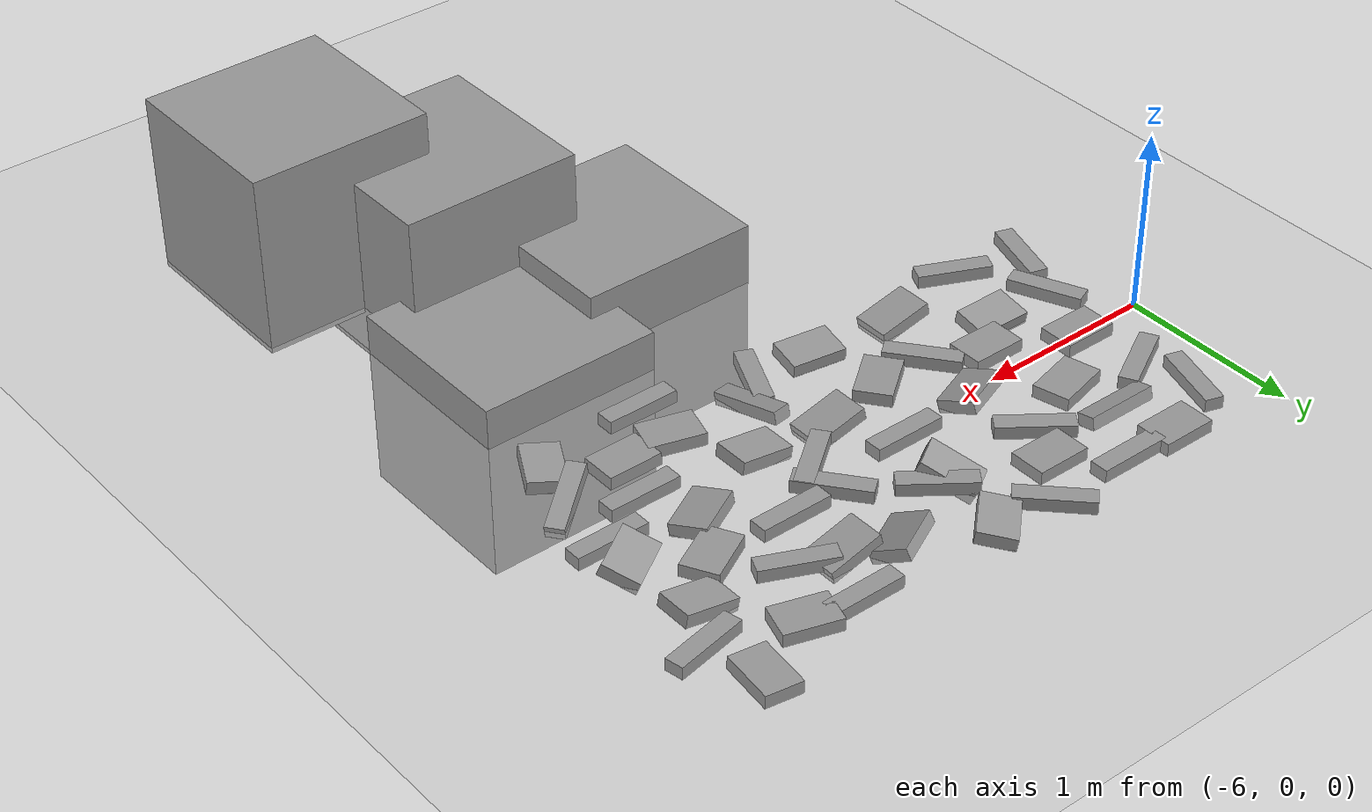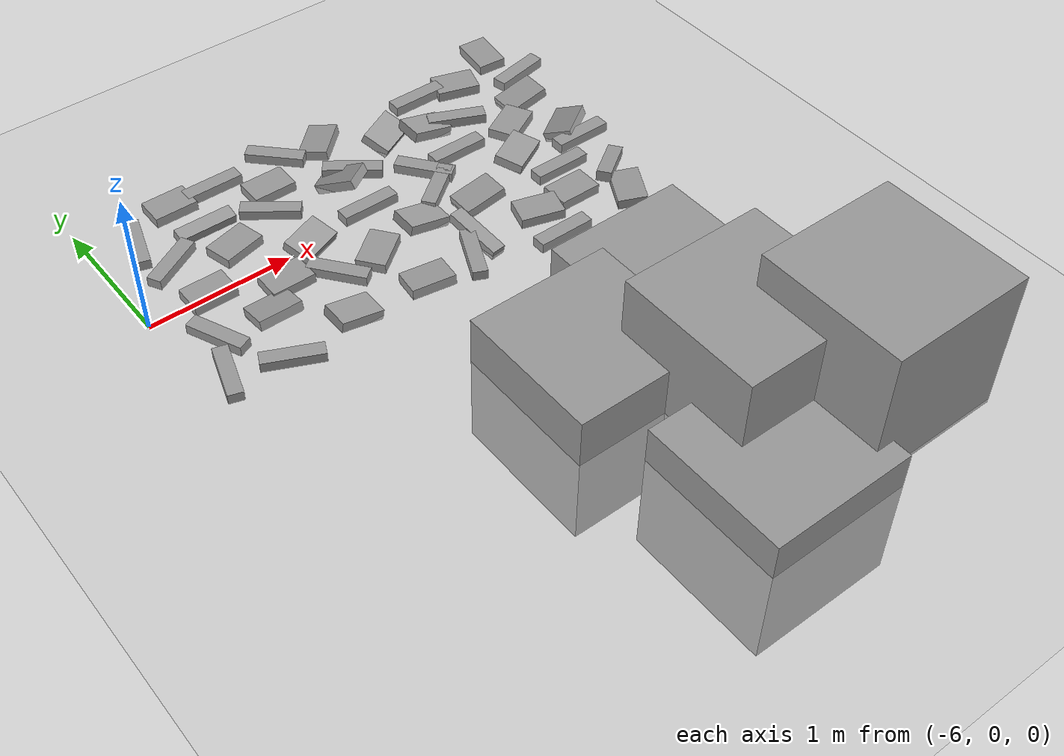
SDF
<sdf version="1.7">
 <world name="default">
  <model name="ground_plane">
   <static>1</static>
   <link name="link">
    <collision name="collision">
     <geometry><plane><normal>0 0 1</normal><size>100 100</size></plane></geometry>
     <surface><friction><ode><mu>200</mu><mu2>200</mu2></ode></friction></surface>
    </collision>
    <visual name="visual">
     <cast_shadows>0</cast_shadows>
     <geometry><plane><normal>0 0 1</normal><size>100 100</size></plane></geometry>
     <material>
      <script><uri>file://media/materials/scripts/gazebo.material</uri><name>Gazebo/Grey</name></script>
     </material>
    </visual>
   </link>
  </model>
  <model name="box_0.4_0.1_0.07_6">
   <pose>-2.83467 -0.561057 0 0 0.21967 0.65136</pose>
   <link name="Stairs_14">
    <visual name="Stairs_14_Visual_0">
     <pose>0 0 0.035 0 -0 0</pose>
     <geometry><box><size>0.4 0.1 0.07</size></box></geometry>
     <material>
      <script><uri>file://media/materials/scripts/gazebo.material</uri><name>Gazebo/Grey</name></script>
      <ambient>1 1 1 1</ambient>
     </material>
     <meta><layer>0</layer></meta>
    </visual>
    <collision name="Stairs_14_Collision_0">
     <geometry><box><size>0.4 0.1 0.07</size></box></geometry>
     <pose>0 0 0.035 0 -0 0</pose>
     <surface><friction><ode><mu>200</mu><mu2>200</mu2></ode></friction></surface>
    </collision>
   </link>
   <static>1</static>
  </model>
  <model name="box_0.4_0.1_0.07_7">
   <pose>-3.9527 -0.560939 0 0 -0.198986 1.69782</pose>
   <link name="Stairs_14">
    <visual name="Stairs_14_Visual_0">
     <pose>0 0 0.035 0 -0 0</pose>
     <geometry><box><size>0.4 0.1 0.07</size></box></geometry>
     <material>
      <script><uri>file://media/materials/scripts/gazebo.material</uri><name>Gazebo/Grey</name></script>
      <ambient>1 1 1 1</ambient>
     </material>
     <meta><layer>0</layer></meta>
    </visual>
    <collision name="Stairs_14_Collision_0">
     <geometry><box><size>0.4 0.1 0.07</size></box></geometry>
     <pose>0 0 0.035 0 -0 0</pose>
     <surface><friction><ode><mu>200</mu><mu2>200</mu2></ode></friction></surface>
    </collision>
   </link>
   <static>1</static>
  </model>
  <model name="box_0.4_0.1_0.07_8">
   <pose>-3.35327 0.459325 0 0 0 -0.427504</pose>
   <link name="Stairs_14">
    <visual name="Stairs_14_Visual_0">
     <pose>0 0 0.035 0 -0 0</pose>
     <geometry><box><size>0.4 0.1 0.07</size></box></geometry>
     <material>
      <script><uri>file://media/materials/scripts/gazebo.material</uri><name>Gazebo/Grey</name></script>
      <ambient>1 1 1 1</ambient>
     </material>
     <meta><layer>0</layer></meta>
    </visual>
    <collision name="Stairs_14_Collision_0">
     <geometry><box><size>0.4 0.1 0.07</size></box></geometry>
     <pose>0 0 0.035 0 -0 0</pose>
     <surface><friction><ode><mu>200</mu><mu2>200</mu2></ode></friction></surface>
    </collision>
   </link>
   <static>1</static>
  </model>
  <model name="box_0.4_0.1_0.07_9">
   <pose>-3.84177 0.151803 0 0 0 -0.909347</pose>
   <link name="Stairs_14">
    <visual name="Stairs_14_Visual_0">
     <pose>0 0 0.035 0 -0 0</pose>
     <geometry><box><size>0.4 0.1 0.07</size></box></geometry>
     <material>
      <script><uri>file://media/materials/scripts/gazebo.material</uri><name>Gazebo/Grey</name></script>
      <ambient>1 1 1 1</ambient>
     </material>
     <meta><layer>0</layer></meta>
    </visual>
    <collision name="Stairs_14_Collision_0">
     <geometry><box><size>0.4 0.1 0.07</size></box></geometry>
     <pose>0 0 0.035 0 -0 0</pose>
     <surface><friction><ode><mu>200</mu><mu2>200</mu2></ode></friction></surface>
    </collision>
   </link>
   <static>1</static>
  </model>
  <model name="box_0.3_0.2_0.1_2">
   <pose>-3.24691 -0.07902 0 0.162224 -0 0.485941</pose>
   <link name="Stairs_9">
    <visual name="Stairs_9_Visual_0">
     <pose>0 0 0.035 0 -0 0</pose>
     <geometry><box><size>0.3 0.2 0.07</size></box></geometry>
     <material>
      <script><uri>file://media/materials/scripts/gazebo.material</uri><name>Gazebo/Grey</name></script>
      <ambient>1 1 1 1</ambient>
     </material>
     <meta><layer>0</layer></meta>
    </visual>
    <collision name="Stairs_9_Collision_0">
     <geometry><box><size>0.3 0.2 0.07</size></box></geometry>
     <pose>0 0 0.035 0 -0 0</pose>
     <surface><friction><ode><mu>200</mu><mu2>200</mu2></ode></friction></surface>
    </collision>
   </link>
   <static>1</static>
  </model>
  <model name="box_0.3_0.2_0.1_4">
   <pose>-3.50067 -0.629827 0 0 0 -0.287884</pose>
   <link name="Stairs_9">
    <visual name="Stairs_9_Visual_0">
     <pose>0 0 0.035 0 -0 0</pose>
     <geometry><box><size>0.3 0.2 0.07</size></box></geometry>
     <material>
      <script><uri>file://media/materials/scripts/gazebo.material</uri><name>Gazebo/Grey</name></script>
      <ambient>1 1 1 1</ambient>
     </material>
     <meta><layer>0</layer></meta>
    </visual>
    <collision name="Stairs_9_Collision_0">
     <geometry><box><size>0.3 0.2 0.07</size></box></geometry>
     <pose>0 0 0.035 0 -0 0</pose>
     <surface><friction><ode><mu>200</mu><mu2>200</mu2></ode></friction></surface>
    </collision>
   </link>
   <static>1</static>
  </model>
  <model name="box_0.3_0.2_0.1_10">
   <pose>-4.24662 0.814175 0 -0.148606 -0 0.746465</pose>
   <link name="Stairs_9">
    <visual name="Stairs_9_Visual_0">
     <pose>0 0 0.035 0 -0 0</pose>
     <geometry><box><size>0.3 0.2 0.07</size></box></geometry>
     <material>
      <script><uri>file://media/materials/scripts/gazebo.material</uri><name>Gazebo/Grey</name></script>
      <ambient>1 1 1 1</ambient>
     </material>
     <meta><layer>0</layer></meta>
    </visual>
    <collision name="Stairs_9_Collision_0">
     <geometry><box><size>0.3 0.2 0.07</size></box></geometry>
     <pose>0 0 0.035 0 -0 0</pose>
     <surface><friction><ode><mu>200</mu><mu2>200</mu2></ode></friction></surface>
    </collision>
   </link>
   <static>1</static>
  </model>
  <model name="box_0.3_0.2_0.1_11">
   <pose>-4.83425 0.032148 0 0.293641 -0 0.364797</pose>
   <link name="Stairs_9">
    <visual name="Stairs_9_Visual_0">
     <pose>0 0 0.035 0 -0 0</pose>
     <geometry><box><size>0.3 0.2 0.07</size></box></geometry>
     <material>
      <script><uri>file://media/materials/scripts/gazebo.material</uri><name>Gazebo/Grey</name></script>
      <ambient>1 1 1 1</ambient>
     </material>
     <meta><layer>0</layer></meta>
    </visual>
    <collision name="Stairs_9_Collision_0">
     <geometry><box><size>0.3 0.2 0.07</size></box></geometry>
     <pose>0 0 0.035 0 -0 0</pose>
     <surface><friction><ode><mu>200</mu><mu2>200</mu2></ode></friction></surface>
    </collision>
   </link>
   <static>1</static>
  </model>
  <model name="box_0.3_0.2_0.1_13">
   <pose>-4.44487 -0.717451 0 -0.093999 -0 -0.154705</pose>
   <link name="Stairs_9">
    <visual name="Stairs_9_Visual_0">
     <pose>0 0 0.035 0 -0 0</pose>
     <geometry><box><size>0.3 0.2 0.07</size></box></geometry>
     <material>
      <script><uri>file://media/materials/scripts/gazebo.material</uri><name>Gazebo/Grey</name></script>
      <ambient>1 1 1 1</ambient>
     </material>
     <meta><layer>0</layer></meta>
    </visual>
    <collision name="Stairs_9_Collision_0">
     <geometry><box><size>0.3 0.2 0.07</size></box></geometry>
     <pose>0 0 0.035 0 -0 0</pose>
     <surface><friction><ode><mu>200</mu><mu2>200</mu2></ode></friction></surface>
    </collision>
   </link>
   <static>1</static>
  </model>
  <model name="box_0.3_0.2_0.1_14">
   <pose>-3.13761 0.765182 0 0 0 -0.305362</pose>
   <link name="Stairs_9">
    <visual name="Stairs_9_Visual_0">
     <pose>0 0 0.035 0 -0 0</pose>
     <geometry><box><size>0.3 0.2 0.07</size></box></geometry>
     <material>
      <script><uri>file://media/materials/scripts/gazebo.material</uri><name>Gazebo/Grey</name></script>
      <ambient>1 1 1 1</ambient>
     </material>
     <meta><layer>0</layer></meta>
    </visual>
    <collision name="Stairs_9_Collision_0">
     <geometry><box><size>0.3 0.2 0.07</size></box></geometry>
     <pose>0 0 0.035 0 -0 0</pose>
     <surface><friction><ode><mu>200</mu><mu2>200</mu2></ode></friction></surface>
    </collision>
   </link>
   <static>1</static>
  </model>
  <model name="box_0.3_0.2_0.1_18">
   <pose>-5.13742 -0.186069 0 0 -0 0</pose>
   <link name="Stairs_9">
    <visual name="Stairs_9_Visual_0">
     <pose>0 0 0.035 0 -0 0</pose>
     <geometry><box><size>0.3 0.2 0.07</size></box></geometry>
     <material>
      <script><uri>file://media/materials/scripts/gazebo.material</uri><name>Gazebo/Grey</name></script>
      <ambient>1 1 1 1</ambient>
     </material>
     <meta><layer>0</layer></meta>
    </visual>
    <collision name="Stairs_9_Collision_0">
     <geometry><box><size>0.3 0.2 0.07</size></box></geometry>
     <pose>0 0 0.035 0 -0 0</pose>
     <surface><friction><ode><mu>200</mu><mu2>200</mu2></ode></friction></surface>
    </collision>
   </link>
   <static>1</static>
  </model>
  <model name="box_0.4_0.1_0.07_13">
   <pose>-4.87489 0.421648 0 0 0 -0.645463</pose>
   <link name="Stairs_14">
    <visual name="Stairs_14_Visual_0">
     <pose>0 0 0.035 0 -0 0</pose>
     <geometry><box><size>0.4 0.1 0.07</size></box></geometry>
     <material>
      <script><uri>file://media/materials/scripts/gazebo.material</uri><name>Gazebo/Grey</name></script>
      <ambient>1 1 1 1</ambient>
     </material>
     <meta><layer>0</layer></meta>
    </visual>
    <collision name="Stairs_14_Collision_0">
     <geometry><box><size>0.4 0.1 0.07</size></box></geometry>
     <pose>0 0 0.035 0 -0 0</pose>
     <surface><friction><ode><mu>200</mu><mu2>200</mu2></ode></friction></surface>
    </collision>
   </link>
   <static>1</static>
  </model>
  <model name="box_0.4_0.1_0.07_14">
   <pose>-5.05743 0.85867 0 0 -0 0</pose>
   <link name="Stairs_14">
    <visual name="Stairs_14_Visual_0">
     <pose>0 0 0.035 0 -0 0</pose>
     <geometry><box><size>0.4 0.1 0.07</size></box></geometry>
     <material>
      <script><uri>file://media/materials/scripts/gazebo.material</uri><name>Gazebo/Grey</name></script>
      <ambient>1 1 1 1</ambient>
     </material>
     <meta><layer>0</layer></meta>
    </visual>
    <collision name="Stairs_14_Collision_0">
     <geometry><box><size>0.4 0.1 0.07</size></box></geometry>
     <pose>0 0 0.035 0 -0 0</pose>
     <surface><friction><ode><mu>200</mu><mu2>200</mu2></ode></friction></surface>
    </collision>
   </link>
   <static>1</static>
  </model>
  <model name="box_0.4_0.1_0.07_15">
   <pose>-5.63027 0.375388 0 0 -0 0.50181</pose>
   <link name="Stairs_14">
    <visual name="Stairs_14_Visual_0">
     <pose>0 0 0.035 0 -0 0</pose>
     <geometry><box><size>0.4 0.1 0.07</size></box></geometry>
     <material>
      <script><uri>file://media/materials/scripts/gazebo.material</uri><name>Gazebo/Grey</name></script>
      <ambient>1 1 1 1</ambient>
     </material>
     <meta><layer>0</layer></meta>
    </visual>
    <collision name="Stairs_14_Collision_0">
     <geometry><box><size>0.4 0.1 0.07</size></box></geometry>
     <pose>0 0 0.035 0 -0 0</pose>
     <surface><friction><ode><mu>200</mu><mu2>200</mu2></ode></friction></surface>
    </collision>
   </link>
   <static>1</static>
  </model>
  <model name="box_0.4_0.1_0.07_16">
   <pose>-5.7174 -0.345289 0 0 0 -1.15775</pose>
   <link name="Stairs_14">
    <visual name="Stairs_14_Visual_0">
     <pose>0 0 0.035 0 -0 0</pose>
     <geometry><box><size>0.4 0.1 0.07</size></box></geometry>
     <material>
      <script><uri>file://media/materials/scripts/gazebo.material</uri><name>Gazebo/Grey</name></script>
      <ambient>1 1 1 1</ambient>
     </material>
     <meta><layer>0</layer></meta>
    </visual>
    <collision name="Stairs_14_Collision_0">
     <geometry><box><size>0.4 0.1 0.07</size></box></geometry>
     <pose>0 0 0.035 0 -0 0</pose>
     <surface><friction><ode><mu>200</mu><mu2>200</mu2></ode></friction></surface>
    </collision>
   </link>
   <static>1</static>
  </model>
  <model name="box_0.4_0.1_0.07_17">
   <pose>-5.45955 -0.765501 0 0 0 -0.432025</pose>
   <link name="Stairs_14">
    <visual name="Stairs_14_Visual_0">
     <pose>0 0 0.035 0 -0 0</pose>
     <geometry><box><size>0.4 0.1 0.07</size></box></geometry>
     <material>
      <script><uri>file://media/materials/scripts/gazebo.material</uri><name>Gazebo/Grey</name></script>
      <ambient>1 1 1 1</ambient>
     </material>
     <meta><layer>0</layer></meta>
    </visual>
    <collision name="Stairs_14_Collision_0">
     <geometry><box><size>0.4 0.1 0.07</size></box></geometry>
     <pose>0 0 0.035 0 -0 0</pose>
     <surface><friction><ode><mu>200</mu><mu2>200</mu2></ode></friction></surface>
    </collision>
   </link>
   <static>1</static>
  </model>
  <model name="box_0.4_0.1_0.07_22">
   <pose>-4.35317 0.072456 0 0 -0 0</pose>
   <link name="Stairs_14">
    <visual name="Stairs_14_Visual_0">
     <pose>0 0 0.035 0 -0 0</pose>
     <geometry><box><size>0.4 0.1 0.07</size></box></geometry>
     <material>
      <script><uri>file://media/materials/scripts/gazebo.material</uri><name>Gazebo/Grey</name></script>
      <ambient>1 1 1 1</ambient>
     </material>
     <meta><layer>0</layer></meta>
    </visual>
    <collision name="Stairs_14_Collision_0">
     <geometry><box><size>0.4 0.1 0.07</size></box></geometry>
     <pose>0 0 0.035 0 -0 0</pose>
     <surface><friction><ode><mu>200</mu><mu2>200</mu2></ode></friction></surface>
    </collision>
   </link>
   <static>1</static>
  </model>
  <model name="box_0.3_0.2_0.1_24">
   <pose>-3.84361 0.632082 0 0.414489 -0 0.464126</pose>
   <link name="Stairs_9">
    <visual name="Stairs_9_Visual_0">
     <pose>0 0 0.035 0 -0 0</pose>
     <geometry><box><size>0.3 0.2 0.07</size></box></geometry>
     <material>
      <script><uri>file://media/materials/scripts/gazebo.material</uri><name>Gazebo/Grey</name></script>
      <ambient>1 1 1 1</ambient>
     </material>
     <meta><layer>0</layer></meta>
    </visual>
    <collision name="Stairs_9_Collision_0">
     <geometry><box><size>0.3 0.2 0.07</size></box></geometry>
     <pose>0 0 0.035 0 -0 0</pose>
     <surface><friction><ode><mu>200</mu><mu2>200</mu2></ode></friction></surface>
    </collision>
   </link>
   <static>1</static>
  </model>
  <model name="box_0.3_0.2_0.1_25">
   <pose>-2.77079 0.926758 0 0.04132 0.005073 -1.6929</pose>
   <link name="Stairs_9">
    <visual name="Stairs_9_Visual_0">
     <pose>0 0 0.035 0 -0 0</pose>
     <geometry><box><size>0.3 0.2 0.07</size></box></geometry>
     <material>
      <script><uri>file://media/materials/scripts/gazebo.material</uri><name>Gazebo/Grey</name></script>
      <ambient>1 1 1 1</ambient>
     </material>
     <meta><layer>0</layer></meta>
    </visual>
    <collision name="Stairs_9_Collision_0">
     <geometry><box><size>0.3 0.2 0.07</size></box></geometry>
     <pose>0 0 0.035 0 -0 0</pose>
     <surface><friction><ode><mu>200</mu><mu2>200</mu2></ode></friction></surface>
    </collision>
   </link>
   <static>1</static>
  </model>
  <model name="box_0.3_0.2_0.1_26">
   <pose>-2.84302 0.380803 0 0 -0.200079 0</pose>
   <link name="Stairs_9">
    <visual name="Stairs_9_Visual_0">
     <pose>0 0 0.035 0 -0 0</pose>
     <geometry><box><size>0.3 0.2 0.07</size></box></geometry>
     <material>
      <script><uri>file://media/materials/scripts/gazebo.material</uri><name>Gazebo/Grey</name></script>
      <ambient>1 1 1 1</ambient>
     </material>
     <meta><layer>0</layer></meta>
    </visual>
    <collision name="Stairs_9_Collision_0">
     <geometry><box><size>0.3 0.2 0.07</size></box></geometry>
     <pose>0 0 0.035 0 -0 0</pose>
     <surface><friction><ode><mu>200</mu><mu2>200</mu2></ode></friction></surface>
    </collision>
   </link>
   <static>1</static>
  </model>
  <model name="box_0.3_0.2_0.1_27">
   <pose>-4.33028 0.401558 0 0 -0.4283 -1.0174</pose>
   <link name="Stairs_9">
    <visual name="Stairs_9_Visual_0">
     <pose>0 0 0.035 0 -0 0</pose>
     <geometry><box><size>0.3 0.2 0.07</size></box></geometry>
     <material>
      <script><uri>file://media/materials/scripts/gazebo.material</uri><name>Gazebo/Grey</name></script>
      <ambient>1 1 1 1</ambient>
     </material>
     <meta><layer>0</layer></meta>
    </visual>
    <collision name="Stairs_9_Collision_0">
     <geometry><box><size>0.3 0.2 0.07</size></box></geometry>
     <pose>0 0 0.035 0 -0 0</pose>
     <surface><friction><ode><mu>200</mu><mu2>200</mu2></ode></friction></surface>
    </collision>
   </link>
   <static>1</static>
  </model>
  <model name="box_0.3_0.2_0.1_28">
   <pose>-3.72262 -0.283281 0 0 -0.157712 0</pose>
   <link name="Stairs_9">
    <visual name="Stairs_9_Visual_0">
     <pose>0 0 0.035 0 -0 0</pose>
     <geometry><box><size>0.3 0.2 0.07</size></box></geometry>
     <material>
      <script><uri>file://media/materials/scripts/gazebo.material</uri><name>Gazebo/Grey</name></script>
      <ambient>1 1 1 1</ambient>
     </material>
     <meta><layer>0</layer></meta>
    </visual>
    <collision name="Stairs_9_Collision_0">
     <geometry><box><size>0.3 0.2 0.07</size></box></geometry>
     <pose>0 0 0.035 0 -0 0</pose>
     <surface><friction><ode><mu>200</mu><mu2>200</mu2></ode></friction></surface>
    </collision>
   </link>
   <static>1</static>
  </model>
  <model name="box_0.3_0.2_0.1_29">
   <pose>-4.54474 -0.31953 0 0 -0 0.647578</pose>
   <link name="Stairs_9">
    <visual name="Stairs_9_Visual_0">
     <pose>0 0 0.035 0 -0 0</pose>
     <geometry><box><size>0.3 0.2 0.07</size></box></geometry>
     <material>
      <script><uri>file://media/materials/scripts/gazebo.material</uri><name>Gazebo/Grey</name></script>
      <ambient>1 1 1 1</ambient>
     </material>
     <meta><layer>0</layer></meta>
    </visual>
    <collision name="Stairs_9_Collision_0">
     <geometry><box><size>0.3 0.2 0.07</size></box></geometry>
     <pose>0 0 0.035 0 -0 0</pose>
     <surface><friction><ode><mu>200</mu><mu2>200</mu2></ode></friction></surface>
    </collision>
   </link>
   <static>1</static>
  </model>
  <model name="box_0.3_0.2_0.1_30">
   <pose>-2.88822 -0.819464 -0.007875 -0.086933 -0 1.07781</pose>
   <link name="Stairs_9">
    <visual name="Stairs_9_Visual_0">
     <pose>0 0 0.035 0 -0 0</pose>
     <geometry><box><size>0.3 0.2 0.07</size></box></geometry>
     <material>
      <script><uri>file://media/materials/scripts/gazebo.material</uri><name>Gazebo/Grey</name></script>
      <ambient>1 1 1 1</ambient>
     </material>
     <meta><layer>0</layer></meta>
    </visual>
    <collision name="Stairs_9_Collision_0">
     <geometry><box><size>0.3 0.2 0.07</size></box></geometry>
     <pose>0 0 0.035 0 -0 0</pose>
     <surface><friction><ode><mu>200</mu><mu2>200</mu2></ode></friction></surface>
    </collision>
   </link>
   <static>1</static>
  </model>
  <model name="box_0.4_0.1_0.07_23">
   <pose>-2.79254 -0.199709 0 0 -0 0</pose>
   <link name="Stairs_14">
    <visual name="Stairs_14_Visual_0">
     <pose>0 0 0.035 0 -0 0</pose>
     <geometry><box><size>0.4 0.1 0.07</size></box></geometry>
     <material>
      <script><uri>file://media/materials/scripts/gazebo.material</uri><name>Gazebo/Grey</name></script>
      <ambient>1 1 1 1</ambient>
     </material>
     <meta><layer>0</layer></meta>
    </visual>
    <collision name="Stairs_14_Collision_0">
     <geometry><box><size>0.4 0.1 0.07</size></box></geometry>
     <pose>0 0 0.035 0 -0 0</pose>
     <surface><friction><ode><mu>200</mu><mu2>200</mu2></ode></friction></surface>
    </collision>
   </link>
   <static>1</static>
  </model>
  <model name="box_0.4_0.1_0.07_24">
   <pose>-3.55858 0.179353 0 0 -0 0</pose>
   <link name="Stairs_14">
    <visual name="Stairs_14_Visual_0">
     <pose>0 0 0.035 0 -0 0</pose>
     <geometry><box><size>0.4 0.1 0.07</size></box></geometry>
     <material>
      <script><uri>file://media/materials/scripts/gazebo.material</uri><name>Gazebo/Grey</name></script>
      <ambient>1 1 1 1</ambient>
     </material>
     <meta><layer>0</layer></meta>
    </visual>
    <collision name="Stairs_14_Collision_0">
     <geometry><box><size>0.4 0.1 0.07</size></box></geometry>
     <pose>0 0 0.035 0 -0 0</pose>
     <surface><friction><ode><mu>200</mu><mu2>200</mu2></ode></friction></surface>
    </collision>
   </link>
   <static>1</static>
  </model>
  <model name="box_0.4_0.1_0.07_26">
   <pose>-4.08505 -0.7108 0 0 -0 1.13869</pose>
   <link name="Stairs_14">
    <visual name="Stairs_14_Visual_0">
     <pose>0 0 0.035 0 -0 0</pose>
     <geometry><box><size>0.4 0.1 0.07</size></box></geometry>
     <material>
      <script><uri>file://media/materials/scripts/gazebo.material</uri><name>Gazebo/Grey</name></script>
      <ambient>1 1 1 1</ambient>
     </material>
     <meta><layer>0</layer></meta>
    </visual>
    <collision name="Stairs_14_Collision_0">
     <geometry><box><size>0.4 0.1 0.07</size></box></geometry>
     <pose>0 0 0.035 0 -0 0</pose>
     <surface><friction><ode><mu>200</mu><mu2>200</mu2></ode></friction></surface>
    </collision>
   </link>
   <static>1</static>
  </model>
  <model name="box_0.4_0.1_0.07_27">
   <pose>-3.51215 -0.893933 0 0 -0 0</pose>
   <link name="Stairs_14">
    <visual name="Stairs_14_Visual_0">
     <pose>0 0 0.035 0 -0 0</pose>
     <geometry><box><size>0.4 0.1 0.07</size></box></geometry>
     <material>
      <script><uri>file://media/materials/scripts/gazebo.material</uri><name>Gazebo/Grey</name></script>
      <ambient>1 1 1 1</ambient>
     </material>
     <meta><layer>0</layer></meta>
    </visual>
    <collision name="Stairs_14_Collision_0">
     <geometry><box><size>0.4 0.1 0.07</size></box></geometry>
     <pose>0 0 0.035 0 -0 0</pose>
     <surface><friction><ode><mu>200</mu><mu2>200</mu2></ode></friction></surface>
    </collision>
   </link>
   <static>1</static>
  </model>
  <model name="box_0.3_0.2_0.1_31">
   <pose>-5.23263 0.276548 0 0 -0 0.243446</pose>
   <link name="Stairs_9">
    <visual name="Stairs_9_Visual_0">
     <pose>0 0 0.035 0 -0 0</pose>
     <geometry><box><size>0.3 0.2 0.07</size></box></geometry>
     <material>
      <script><uri>file://media/materials/scripts/gazebo.material</uri><name>Gazebo/Grey</name></script>
      <ambient>1 1 1 1</ambient>
     </material>
     <meta><layer>0</layer></meta>
    </visual>
    <collision name="Stairs_9_Collision_0">
     <geometry><box><size>0.3 0.2 0.07</size></box></geometry>
     <pose>0 0 0.035 0 -0 0</pose>
     <surface><friction><ode><mu>200</mu><mu2>200</mu2></ode></friction></surface>
    </collision>
   </link>
   <static>1</static>
  </model>
  <model name="box_0.3_0.2_0.1_33">
   <pose>-3.58843 0.511656 0 0 0.248657 0</pose>
   <link name="Stairs_9">
    <visual name="Stairs_9_Visual_0">
     <pose>0 0 0.035 0 -0 0</pose>
     <geometry><box><size>0.3 0.2 0.07</size></box></geometry>
     <material>
      <script><uri>file://media/materials/scripts/gazebo.material</uri><name>Gazebo/Grey</name></script>
      <ambient>1 1 1 1</ambient>
     </material>
     <meta><layer>0</layer></meta>
    </visual>
    <collision name="Stairs_9_Collision_0">
     <geometry><box><size>0.3 0.2 0.07</size></box></geometry>
     <pose>0 0 0.035 0 -0 0</pose>
     <surface><friction><ode><mu>200</mu><mu2>200</mu2></ode></friction></surface>
    </collision>
   </link>
   <static>1</static>
  </model>
  <model name="box_0.3_0.2_0.1_34">
   <pose>-4.15327 -0.23297 0 0 0.224487 0</pose>
   <link name="Stairs_9">
    <visual name="Stairs_9_Visual_0">
     <pose>0 0 0.035 0 -0 0</pose>
     <geometry><box><size>0.3 0.2 0.07</size></box></geometry>
     <material>
      <script><uri>file://media/materials/scripts/gazebo.material</uri><name>Gazebo/Grey</name></script>
      <ambient>1 1 1 1</ambient>
     </material>
     <meta><layer>0</layer></meta>
    </visual>
    <collision name="Stairs_9_Collision_0">
     <geometry><box><size>0.3 0.2 0.07</size></box></geometry>
     <pose>0 0 0.035 0 -0 0</pose>
     <surface><friction><ode><mu>200</mu><mu2>200</mu2></ode></friction></surface>
    </collision>
   </link>
   <static>1</static>
  </model>
  <model name="box_0.3_0.2_0.1_35">
   <pose>-4.76651 0.628506 0 0 -0 0</pose>
   <link name="Stairs_9">
    <visual name="Stairs_9_Visual_0">
     <pose>0 0 0.035 0 -0 0</pose>
     <geometry><box><size>0.3 0.2 0.07</size></box></geometry>
     <material>
      <script><uri>file://media/materials/scripts/gazebo.material</uri><name>Gazebo/Grey</name></script>
      <ambient>1 1 1 1</ambient>
     </material>
     <meta><layer>0</layer></meta>
    </visual>
    <collision name="Stairs_9_Collision_0">
     <geometry><box><size>0.3 0.2 0.07</size></box></geometry>
     <pose>0 0 0.035 0 -0 0</pose>
     <surface><friction><ode><mu>200</mu><mu2>200</mu2></ode></friction></surface>
    </collision>
   </link>
   <static>1</static>
  </model>
  <model name="box_0.3_0.2_0.1_36">
   <pose>-3.2043 -0.611051 0 0 -0 0</pose>
   <link name="Stairs_9">
    <visual name="Stairs_9_Visual_0">
     <pose>0 0 0.035 0 -0 0</pose>
     <geometry><box><size>0.3 0.2 0.07</size></box></geometry>
     <material>
      <script><uri>file://media/materials/scripts/gazebo.material</uri><name>Gazebo/Grey</name></script>
      <ambient>1 1 1 1</ambient>
     </material>
     <meta><layer>0</layer></meta>
    </visual>
    <collision name="Stairs_9_Collision_0">
     <geometry><box><size>0.3 0.2 0.07</size></box></geometry>
     <pose>0 0 0.035 0 -0 0</pose>
     <surface><friction><ode><mu>200</mu><mu2>200</mu2></ode></friction></surface>
    </collision>
   </link>
   <static>1</static>
  </model>
  <model name="box_0.3_0.2_0.1_37">
   <pose>-5.33812 -0.362217 0 -0.173222 0 0</pose>
   <link name="Stairs_9">
    <visual name="Stairs_9_Visual_0">
     <pose>0 0 0.035 0 -0 0</pose>
     <geometry><box><size>0.3 0.2 0.07</size></box></geometry>
     <material>
      <script><uri>file://media/materials/scripts/gazebo.material</uri><name>Gazebo/Grey</name></script>
      <ambient>1 1 1 1</ambient>
     </material>
     <meta><layer>0</layer></meta>
    </visual>
    <collision name="Stairs_9_Collision_0">
     <geometry><box><size>0.3 0.2 0.07</size></box></geometry>
     <pose>0 0 0.035 0 -0 0</pose>
     <surface><friction><ode><mu>200</mu><mu2>200</mu2></ode></friction></surface>
    </collision>
   </link>
   <static>1</static>
  </model>
  <model name="box_0.3_0.2_0.1_38">
   <pose>-4.97391 -0.676954 0 0 0.207576 0</pose>
   <link name="Stairs_9">
    <visual name="Stairs_9_Visual_0">
     <pose>0 0 0.035 0 -0 0</pose>
     <geometry><box><size>0.3 0.2 0.07</size></box></geometry>
     <material>
      <script><uri>file://media/materials/scripts/gazebo.material</uri><name>Gazebo/Grey</name></script>
      <ambient>1 1 1 1</ambient>
     </material>
     <meta><layer>0</layer></meta>
    </visual>
    <collision name="Stairs_9_Collision_0">
     <geometry><box><size>0.3 0.2 0.07</size></box></geometry>
     <pose>0 0 0.035 0 -0 0</pose>
     <surface><friction><ode><mu>200</mu><mu2>200</mu2></ode></friction></surface>
    </collision>
   </link>
   <static>1</static>
  </model>
  <model name="box_0.3_0.2_0.1_39">
   <pose>-5.37394 0.854881 0 0 -0 0</pose>
   <link name="Stairs_9">
    <visual name="Stairs_9_Visual_0">
     <pose>0 0 0.035 0 -0 0</pose>
     <geometry><box><size>0.3 0.2 0.07</size></box></geometry>
     <material>
      <script><uri>file://media/materials/scripts/gazebo.material</uri><name>Gazebo/Grey</name></script>
      <ambient>1 1 1 1</ambient>
     </material>
     <meta><layer>0</layer></meta>
    </visual>
    <collision name="Stairs_9_Collision_0">
     <geometry><box><size>0.3 0.2 0.07</size></box></geometry>
     <pose>0 0 0.035 0 -0 0</pose>
     <surface><friction><ode><mu>200</mu><mu2>200</mu2></ode></friction></surface>
    </collision>
   </link>
   <static>1</static>
  </model>
  <model name="box_0.3_0.2_0.1_42">
   <pose>-2.78828 -0.052875 0 -0.371727 -0 0.579103</pose>
   <link name="Stairs_9">
    <visual name="Stairs_9_Visual_0">
     <pose>0 0 0.035 0 -0 0</pose>
     <geometry><box><size>0.3 0.2 0.07</size></box></geometry>
     <material>
      <script><uri>file://media/materials/scripts/gazebo.material</uri><name>Gazebo/Grey</name></script>
      <ambient>1 1 1 1</ambient>
     </material>
     <meta><layer>0</layer></meta>
    </visual>
    <collision name="Stairs_9_Collision_0">
     <geometry><box><size>0.3 0.2 0.07</size></box></geometry>
     <pose>0 0 0.035 0 -0 0</pose>
     <surface><friction><ode><mu>200</mu><mu2>200</mu2></ode></friction></surface>
    </collision>
   </link>
   <static>1</static>
  </model>
  <model name="box_0.3_0.2_0.1_44">
   <pose>-5.57863 0.004751 0 0 -0 0</pose>
   <link name="Stairs_9">
    <visual name="Stairs_9_Visual_0">
     <pose>0 0 0.035 0 -0 0</pose>
     <geometry><box><size>0.3 0.2 0.07</size></box></geometry>
     <material>
      <script><uri>file://media/materials/scripts/gazebo.material</uri><name>Gazebo/Grey</name></script>
      <ambient>1 1 1 1</ambient>
     </material>
     <meta><layer>0</layer></meta>
    </visual>
    <collision name="Stairs_9_Collision_0">
     <geometry><box><size>0.3 0.2 0.07</size></box></geometry>
     <pose>0 0 0.035 0 -0 0</pose>
     <surface><friction><ode><mu>200</mu><mu2>200</mu2></ode></friction></surface>
    </collision>
   </link>
   <static>1</static>
  </model>
  <model name="box_0.4_0.1_0.07_29">
   <pose>-3.43843 0.808641 0 0 -0 0</pose>
   <link name="Stairs_14">
    <visual name="Stairs_14_Visual_0">
     <pose>0 0 0.035 0 -0 0</pose>
     <geometry><box><size>0.4 0.1 0.07</size></box></geometry>
     <material>
      <script><uri>file://media/materials/scripts/gazebo.material</uri><name>Gazebo/Grey</name></script>
      <ambient>1 1 1 1</ambient>
     </material>
     <meta><layer>0</layer></meta>
    </visual>
    <collision name="Stairs_14_Collision_0">
     <geometry><box><size>0.4 0.1 0.07</size></box></geometry>
     <pose>0 0 0.035 0 -0 0</pose>
     <surface><friction><ode><mu>200</mu><mu2>200</mu2></ode></friction></surface>
    </collision>
   </link>
   <static>1</static>
  </model>
  <model name="box_0.4_0.1_0.07_30">
   <pose>-3.88412 -0.047896 0 0 -0 0.646358</pose>
   <link name="Stairs_14">
    <visual name="Stairs_14_Visual_0">
     <pose>0 0 0.035 0 -0 0</pose>
     <geometry><box><size>0.4 0.1 0.07</size></box></geometry>
     <material>
      <script><uri>file://media/materials/scripts/gazebo.material</uri><name>Gazebo/Grey</name></script>
      <ambient>1 1 1 1</ambient>
     </material>
     <meta><layer>0</layer></meta>
    </visual>
    <collision name="Stairs_14_Collision_0">
     <geometry><box><size>0.4 0.1 0.07</size></box></geometry>
     <pose>0 0 0.035 0 -0 0</pose>
     <surface><friction><ode><mu>200</mu><mu2>200</mu2></ode></friction></surface>
    </collision>
   </link>
   <static>1</static>
  </model>
  <model name="box_0.4_0.1_0.07_39">
   <pose>-3.1139 -0.370835 0 0 -0 0</pose>
   <link name="Stairs_14">
    <visual name="Stairs_14_Visual_0">
     <pose>0 0 0.035 0 -0 0</pose>
     <geometry><box><size>0.4 0.1 0.07</size></box></geometry>
     <material>
      <script><uri>file://media/materials/scripts/gazebo.material</uri><name>Gazebo/Grey</name></script>
      <ambient>1 1 1 1</ambient>
     </material>
     <meta><layer>0</layer></meta>
    </visual>
    <collision name="Stairs_14_Collision_0">
     <geometry><box><size>0.4 0.1 0.07</size></box></geometry>
     <pose>0 0 0.035 0 -0 0</pose>
     <surface><friction><ode><mu>200</mu><mu2>200</mu2></ode></friction></surface>
    </collision>
   </link>
   <static>1</static>
  </model>
  <model name="box_0.4_0.1_0.07_40">
   <pose>-5.2877 0.558721 0 0.218698 -0 0</pose>
   <link name="Stairs_14">
    <visual name="Stairs_14_Visual_0">
     <pose>0 0 0.035 0 -0 0</pose>
     <geometry><box><size>0.4 0.1 0.07</size></box></geometry>
     <material>
      <script><uri>file://media/materials/scripts/gazebo.material</uri><name>Gazebo/Grey</name></script>
      <ambient>1 1 1 1</ambient>
     </material>
     <meta><layer>0</layer></meta>
    </visual>
    <collision name="Stairs_14_Collision_0">
     <geometry><box><size>0.4 0.1 0.07</size></box></geometry>
     <pose>0 0 0.035 0 -0 0</pose>
     <surface><friction><ode><mu>200</mu><mu2>200</mu2></ode></friction></surface>
    </collision>
   </link>
   <static>1</static>
  </model>
  <model name="box_0.3_0.2_0.1_50">
   <pose>-3.09288 0.177307 0 0 -0 0.489225</pose>
   <link name="Stairs_9">
    <visual name="Stairs_9_Visual_0">
     <pose>0 0 0.035 0 -0 0</pose>
     <geometry><box><size>0.3 0.2 0.07</size></box></geometry>
     <material>
      <script><uri>file://media/materials/scripts/gazebo.material</uri><name>Gazebo/Grey</name></script>
      <ambient>1 1 1 1</ambient>
     </material>
     <meta><layer>0</layer></meta>
    </visual>
    <collision name="Stairs_9_Collision_0">
     <geometry><box><size>0.3 0.2 0.07</size></box></geometry>
     <pose>0 0 0.035 0 -0 0</pose>
     <surface><friction><ode><mu>200</mu><mu2>200</mu2></ode></friction></surface>
    </collision>
   </link>
   <static>1</static>
  </model>
  <model name="box_0.4_0.1_0.07_12_clone">
   <pose>-4.56013 0.871448 0 0 0 -0.796152</pose>
   <link name="Stairs_14">
    <visual name="Stairs_14_Visual_0">
     <pose>0 0 0.035 0 -0 0</pose>
     <geometry><box><size>0.4 0.1 0.07</size></box></geometry>
     <material>
      <script><uri>file://media/materials/scripts/gazebo.material</uri><name>Gazebo/Grey</name></script>
      <ambient>1 1 1 1</ambient>
     </material>
     <meta><layer>0</layer></meta>
    </visual>
    <collision name="Stairs_14_Collision_0">
     <geometry><box><size>0.4 0.1 0.07</size></box></geometry>
     <pose>0 0 0.035 0 -0 0</pose>
     <surface><friction><ode><mu>200</mu><mu2>200</mu2></ode></friction></surface>
    </collision>
   </link>
   <static>1</static>
  </model>
  <model name="box_0.4_0.1_0.07_9_clone">
   <pose>-4.84328 -0.323003 0 0 0 -0.909347</pose>
   <link name="Stairs_14">
    <visual name="Stairs_14_Visual_0">
     <pose>0 0 0.035 0 -0 0</pose>
     <geometry><box><size>0.4 0.1 0.07</size></box></geometry>
     <material>
      <script><uri>file://media/materials/scripts/gazebo.material</uri><name>Gazebo/Grey</name></script>
      <ambient>1 1 1 1</ambient>
     </material>
     <meta><layer>0</layer></meta>
    </visual>
    <collision name="Stairs_14_Collision_0">
     <geometry><box><size>0.4 0.1 0.07</size></box></geometry>
     <pose>0 0 0.035 0 -0 0</pose>
     <surface><friction><ode><mu>200</mu><mu2>200</mu2></ode></friction></surface>
    </collision>
   </link>
   <static>1</static>
  </model>
  <model name="box_0.4_0.1_0.07_10_clone">
   <pose>-2.68892 0.614335 0 0 -0 0.188316</pose>
   <link name="Stairs_14">
    <visual name="Stairs_14_Visual_0">
     <pose>0 0 0.035 0 -0 0</pose>
     <geometry><box><size>0.4 0.1 0.07</size></box></geometry>
     <material>
      <script><uri>file://media/materials/scripts/gazebo.material</uri><name>Gazebo/Grey</name></script>
      <ambient>1 1 1 1</ambient>
     </material>
     <meta><layer>0</layer></meta>
    </visual>
    <collision name="Stairs_14_Collision_0">
     <geometry><box><size>0.4 0.1 0.07</size></box></geometry>
     <pose>0 0 0.035 0 -0 0</pose>
     <surface><friction><ode><mu>200</mu><mu2>200</mu2></ode></friction></surface>
    </collision>
   </link>
   <static>1</static>
  </model>
  <model name="box_0.4_0.1_0.07_28_clone_3_clone_3">
   <pose>-5.71961 0.654932 0 0 -0 1.2714</pose>
   <link name="Stairs_14">
    <visual name="Stairs_14_Visual_0">
     <pose>0 0 0.035 0 -0 0</pose>
     <geometry><box><size>0.4 0.1 0.07</size></box></geometry>
     <material>
      <script><uri>file://media/materials/scripts/gazebo.material</uri><name>Gazebo/Grey</name></script>
      <ambient>1 1 1 1</ambient>
     </material>
     <meta><layer>0</layer></meta>
    </visual>
    <collision name="Stairs_14_Collision_0">
     <geometry><box><size>0.4 0.1 0.07</size></box></geometry>
     <pose>0 0 0.035 0 -0 0</pose>
     <surface><friction><ode><mu>200</mu><mu2>200</mu2></ode></friction></surface>
    </collision>
   </link>
   <static>1</static>
  </model>
  <model name="box_0.4_0.1_0.07_28_clone_3_clone_4">
   <pose>-5.8306 -0.650176 0 0 -0 1.2714</pose>
   <link name="Stairs_14">
    <visual name="Stairs_14_Visual_0">
     <pose>0 0 0.035 0 -0 0</pose>
     <geometry><box><size>0.4 0.1 0.07</size></box></geometry>
     <material>
      <script><uri>file://media/materials/scripts/gazebo.material</uri><name>Gazebo/Grey</name></script>
      <ambient>1 1 1 1</ambient>
     </material>
     <meta><layer>0</layer></meta>
    </visual>
    <collision name="Stairs_14_Collision_0">
     <geometry><box><size>0.4 0.1 0.07</size></box></geometry>
     <pose>0 0 0.035 0 -0 0</pose>
     <surface><friction><ode><mu>200</mu><mu2>200</mu2></ode></friction></surface>
    </collision>
   </link>
   <static>1</static>
  </model>
  <model name="box_0.4_0.1_0.07_13_clone">
   <pose>-4.2258 0.441304 0 0 0 -0.645463</pose>
   <link name="Stairs_14">
    <visual name="Stairs_14_Visual_0">
     <pose>0 0 0.035 0 -0 0</pose>
     <geometry><box><size>0.4 0.1 0.07</size></box></geometry>
     <material>
      <script><uri>file://media/materials/scripts/gazebo.material</uri><name>Gazebo/Grey</name></script>
      <ambient>1 1 1 1</ambient>
     </material>
     <meta><layer>0</layer></meta>
    </visual>
    <collision name="Stairs_14_Collision_0">
     <geometry><box><size>0.4 0.1 0.07</size></box></geometry>
     <pose>0 0 0.035 0 -0 0</pose>
     <surface><friction><ode><mu>200</mu><mu2>200</mu2></ode></friction></surface>
    </collision>
   </link>
   <static>1</static>
  </model>
  <model name="box_1_1_1_clone_0">
   <pose>-3.49595 -2.49559 -0.266632 0 -0 0</pose>
   <link name="Stairs_8">
    <visual name="Stairs_8_Visual_0">
     <pose>0 0 0.5 0 -0 0</pose>
     <geometry><box><size>1 1 1</size></box></geometry>
     <material>
      <script><uri>file://media/materials/scripts/gazebo.material</uri><name>Gazebo/Grey</name></script>
      <ambient>1 1 1 1</ambient>
     </material>
     <meta><layer>0</layer></meta>
    </visual>
    <collision name="Stairs_8_Collision_0">
     <geometry><box><size>1 1 1</size></box></geometry>
     <pose>0 0 0.5 0 -0 0</pose>
     <surface><friction><ode><mu>200</mu><mu2>200</mu2></ode></friction></surface>
    </collision>
   </link>
   <static>1</static>
  </model>
  <model name="box_1_1_1_clone_1">
   <pose>-4.13037 -1.90484 -0.658514 0 -0 0</pose>
   <link name="Stairs_8">
    <visual name="Stairs_8_Visual_0">
     <pose>0 0 0.5 0 -0 0</pose>
     <geometry><box><size>1 1 1</size></box></geometry>
     <material>
      <script><uri>file://media/materials/scripts/gazebo.material</uri><name>Gazebo/Grey</name></script>
      <ambient>1 1 1 1</ambient>
     </material>
     <meta><layer>0</layer></meta>
    </visual>
    <collision name="Stairs_8_Collision_0">
     <geometry><box><size>1 1 1</size></box></geometry>
     <pose>0 0 0.5 0 -0 0</pose>
     <surface><friction><ode><mu>200</mu><mu2>200</mu2></ode></friction></surface>
    </collision>
   </link>
   <static>1</static>
  </model>
  <model name="box_1_1_1_clone_1_clone">
   <pose>-3.29794 -1.62548 -0.781067 0 -0 0</pose>
   <link name="Stairs_8">
    <visual name="Stairs_8_Visual_0">
     <pose>0 0 0.5 0 -0 0</pose>
     <geometry><box><size>1 1 1</size></box></geometry>
     <material>
      <script><uri>file://media/materials/scripts/gazebo.material</uri><name>Gazebo/Grey</name></script>
      <ambient>1 1 1 1</ambient>
     </material>
     <meta><layer>0</layer></meta>
    </visual>
    <collision name="Stairs_8_Collision_0">
     <geometry><box><size>1 1 1</size></box></geometry>
     <pose>0 0 0.5 0 -0 0</pose>
     <surface><friction><ode><mu>200</mu><mu2>200</mu2></ode></friction></surface>
    </collision>
   </link>
   <static>1</static>
  </model>
  <model name="box_1_1_1_clone_1_clone_0">
   <pose>-3.81575 -3.09492 -0.744548 0 -0 0</pose>
   <link name="Stairs_8">
    <visual name="Stairs_8_Visual_0">
     <pose>0 0 0.5 0 -0 0</pose>
     <geometry><box><size>1 1 1</size></box></geometry>
     <material>
      <script><uri>file://media/materials/scripts/gazebo.material</uri><name>Gazebo/Grey</name></script>
      <ambient>1 1 1 1</ambient>
     </material>
     <meta><layer>0</layer></meta>
    </visual>
    <collision name="Stairs_8_Collision_0">
     <geometry><box><size>1 1 1</size></box></geometry>
     <pose>0 0 0.5 0 -0 0</pose>
     <surface><friction><ode><mu>200</mu><mu2>200</mu2></ode></friction></surface>
    </collision>
   </link>
   <static>1</static>
  </model>
  <model name="box_1_1_1_clone_1_clone_1">
   <pose>-2.94473 -2.9643 -0.034186 0 -0 0</pose>
   <link name="Stairs_8">
    <visual name="Stairs_8_Visual_0">
     <pose>0 0 0.5 0 -0 0</pose>
     <geometry><box><size>1 1 1</size></box></geometry>
     <material>
      <script><uri>file://media/materials/scripts/gazebo.material</uri><name>Gazebo/Grey</name></script>
      <ambient>1 1 1 1</ambient>
     </material>
     <meta><layer>0</layer></meta>
    </visual>
    <collision name="Stairs_8_Collision_0">
     <geometry><box><size>1 1 1</size></box></geometry>
     <pose>0 0 0.5 0 -0 0</pose>
     <surface><friction><ode><mu>200</mu><mu2>200</mu2></ode></friction></surface>
    </collision>
   </link>
   <static>1</static>
  </model>
 </world>
</sdf>
